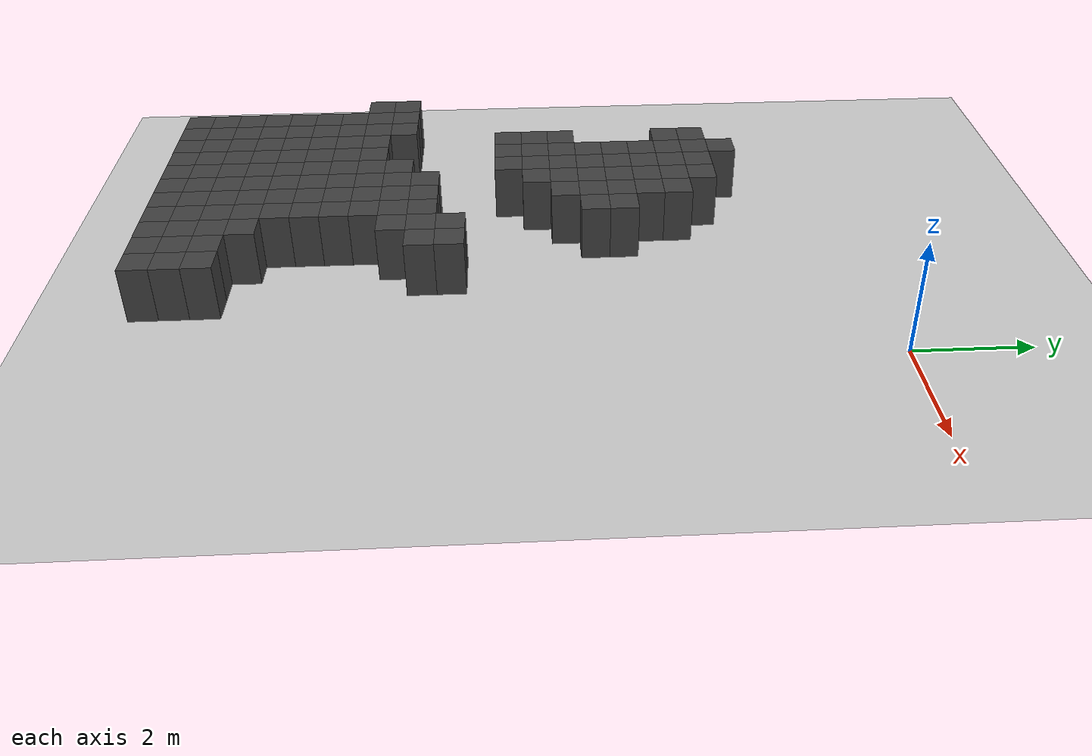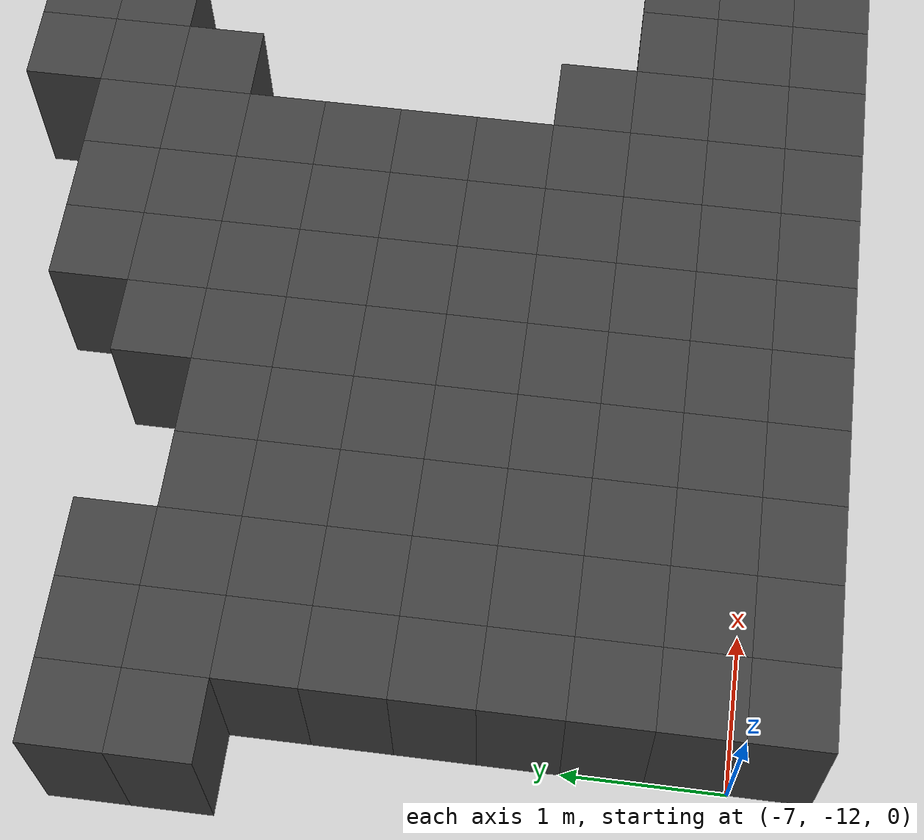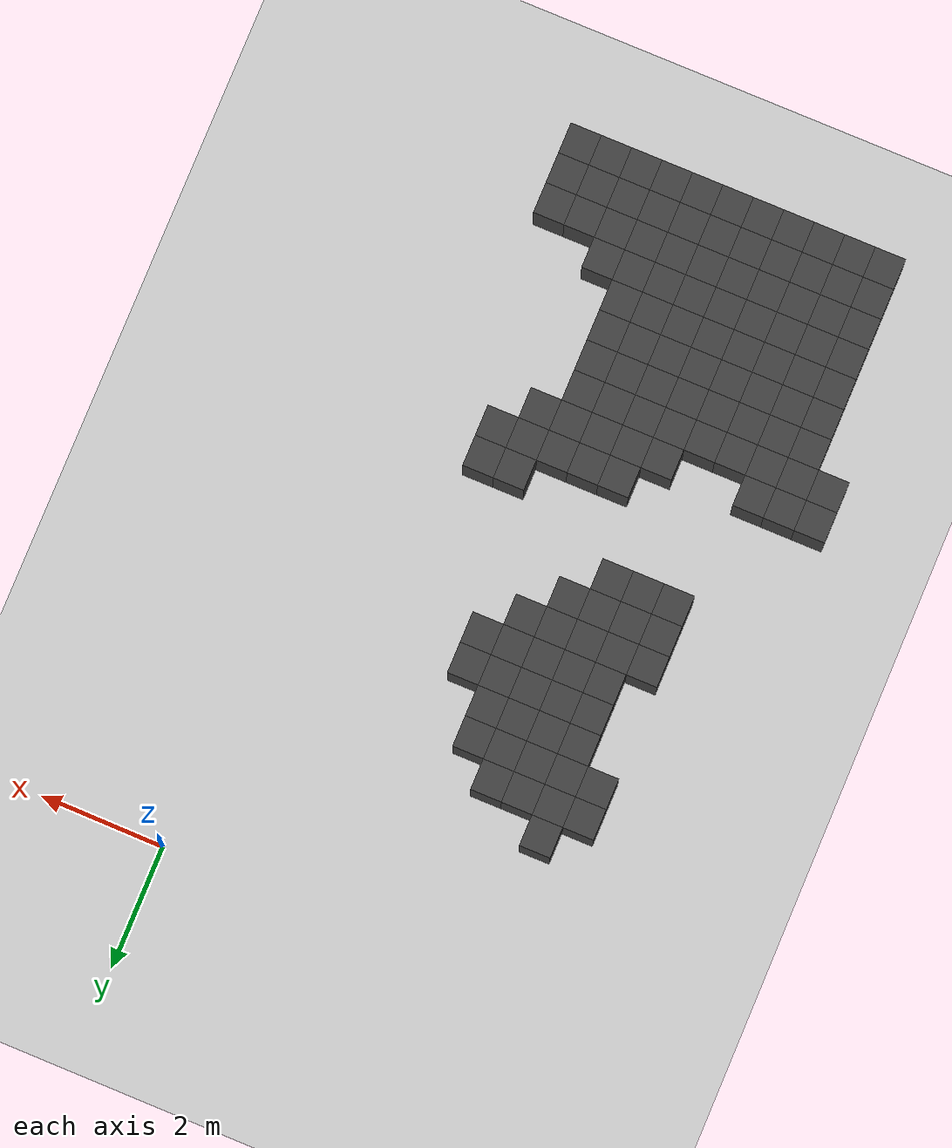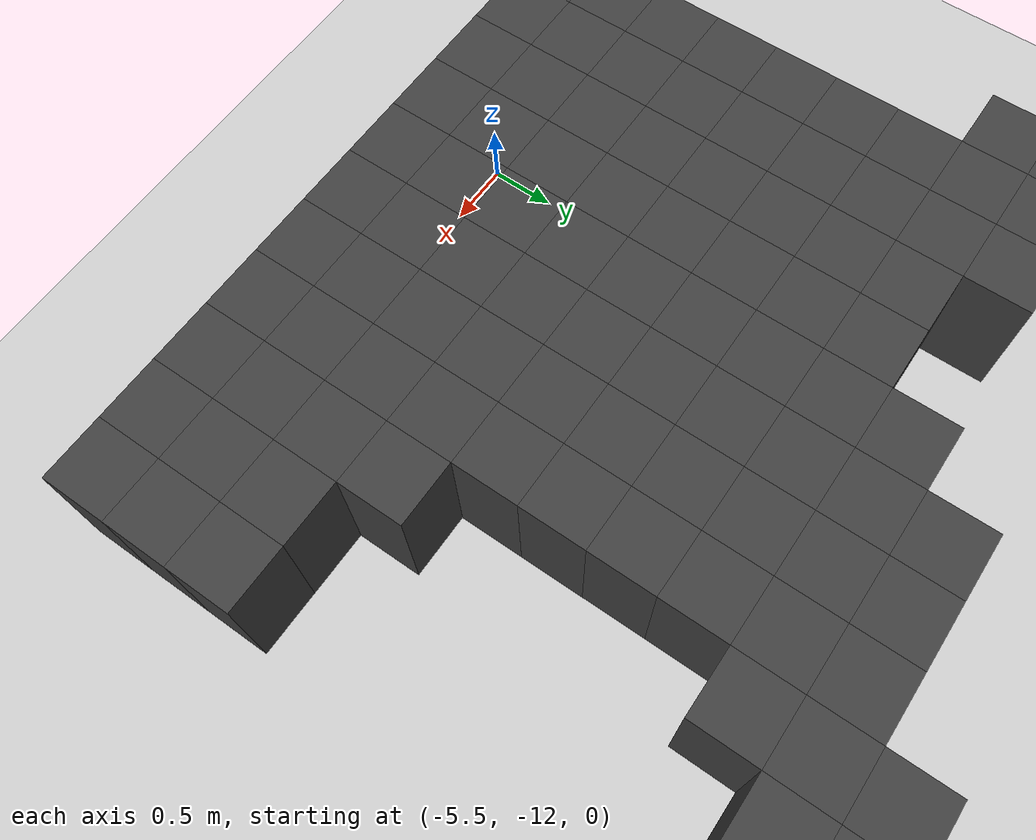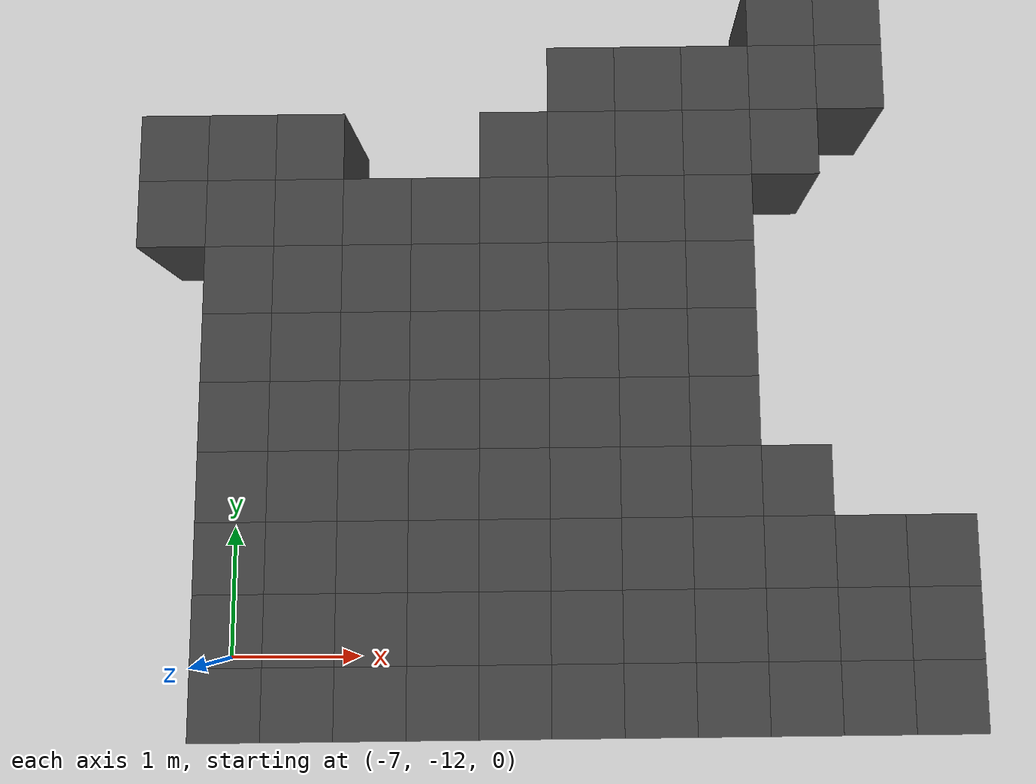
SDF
<sdf version="1.7">
 <world name="map_8658">
  <model name="ground_plane">
   <static>true</static>
   <link name="link">
    <collision name="collision">
     <geometry><plane><normal>0 0 1</normal><size>200 200</size></plane></geometry>
    </collision>
    <visual name="visual">
     <geometry><plane><normal>0 0 1</normal><size>200 200</size></plane></geometry>
     <material><ambient>0.8 0.8 0.8 1</ambient><diffuse>0.8 0.8 0.8 1</diffuse></material>
    </visual>
   </link>
  </model>
  <model name="maze_environment">
   <static>true</static>
   <link name="wall_579">
    <pose>-5.250 -2.250 0.500 0 0 0</pose>
    <collision name="col"><geometry><box><size>0.5 0.5 1.0</size></box></geometry></collision>
    <visual name="vis">
     <geometry><box><size>0.5 0.5 1.0</size></box></geometry>
     <material><ambient>0.15 0.15 0.15 1</ambient><diffuse>0.25 0.25 0.25 1</diffuse></material>
    </visual>
   </link>
   <link name="wall_601">
    <pose>-5.750 -2.750 0.500 0 0 0</pose>
    <collision name="col"><geometry><box><size>0.5 0.5 1.0</size></box></geometry></collision>
    <visual name="vis">
     <geometry><box><size>0.5 0.5 1.0</size></box></geometry>
     <material><ambient>0.15 0.15 0.15 1</ambient><diffuse>0.25 0.25 0.25 1</diffuse></material>
    </visual>
   </link>
   <link name="wall_602">
    <pose>-5.250 -2.750 0.500 0 0 0</pose>
    <collision name="col"><geometry><box><size>0.5 0.5 1.0</size></box></geometry></collision>
    <visual name="vis">
     <geometry><box><size>0.5 0.5 1.0</size></box></geometry>
     <material><ambient>0.15 0.15 0.15 1</ambient><diffuse>0.25 0.25 0.25 1</diffuse></material>
    </visual>
   </link>
   <link name="wall_603">
    <pose>-4.750 -2.750 0.500 0 0 0</pose>
    <collision name="col"><geometry><box><size>0.5 0.5 1.0</size></box></geometry></collision>
    <visual name="vis">
     <geometry><box><size>0.5 0.5 1.0</size></box></geometry>
     <material><ambient>0.15 0.15 0.15 1</ambient><diffuse>0.25 0.25 0.25 1</diffuse></material>
    </visual>
   </link>
   <link name="wall_604">
    <pose>-4.250 -2.750 0.500 0 0 0</pose>
    <collision name="col"><geometry><box><size>0.5 0.5 1.0</size></box></geometry></collision>
    <visual name="vis">
     <geometry><box><size>0.5 0.5 1.0</size></box></geometry>
     <material><ambient>0.15 0.15 0.15 1</ambient><diffuse>0.25 0.25 0.25 1</diffuse></material>
    </visual>
   </link>
   <link name="wall_621">
    <pose>-5.750 -3.250 0.500 0 0 0</pose>
    <collision name="col"><geometry><box><size>0.5 0.5 1.0</size></box></geometry></collision>
    <visual name="vis">
     <geometry><box><size>0.5 0.5 1.0</size></box></geometry>
     <material><ambient>0.15 0.15 0.15 1</ambient><diffuse>0.25 0.25 0.25 1</diffuse></material>
    </visual>
   </link>
   <link name="wall_622">
    <pose>-5.250 -3.250 0.500 0 0 0</pose>
    <collision name="col"><geometry><box><size>0.5 0.5 1.0</size></box></geometry></collision>
    <visual name="vis">
     <geometry><box><size>0.5 0.5 1.0</size></box></geometry>
     <material><ambient>0.15 0.15 0.15 1</ambient><diffuse>0.25 0.25 0.25 1</diffuse></material>
    </visual>
   </link>
   <link name="wall_623">
    <pose>-4.750 -3.250 0.500 0 0 0</pose>
    <collision name="col"><geometry><box><size>0.5 0.5 1.0</size></box></geometry></collision>
    <visual name="vis">
     <geometry><box><size>0.5 0.5 1.0</size></box></geometry>
     <material><ambient>0.15 0.15 0.15 1</ambient><diffuse>0.25 0.25 0.25 1</diffuse></material>
    </visual>
   </link>
   <link name="wall_624">
    <pose>-4.250 -3.250 0.500 0 0 0</pose>
    <collision name="col"><geometry><box><size>0.5 0.5 1.0</size></box></geometry></collision>
    <visual name="vis">
     <geometry><box><size>0.5 0.5 1.0</size></box></geometry>
     <material><ambient>0.15 0.15 0.15 1</ambient><diffuse>0.25 0.25 0.25 1</diffuse></material>
    </visual>
   </link>
   <link name="wall_625">
    <pose>-3.750 -3.250 0.500 0 0 0</pose>
    <collision name="col"><geometry><box><size>0.5 0.5 1.0</size></box></geometry></collision>
    <visual name="vis">
     <geometry><box><size>0.5 0.5 1.0</size></box></geometry>
     <material><ambient>0.15 0.15 0.15 1</ambient><diffuse>0.25 0.25 0.25 1</diffuse></material>
    </visual>
   </link>
   <link name="wall_639">
    <pose>-5.250 -3.750 0.500 0 0 0</pose>
    <collision name="col"><geometry><box><size>0.5 0.5 1.0</size></box></geometry></collision>
    <visual name="vis">
     <geometry><box><size>0.5 0.5 1.0</size></box></geometry>
     <material><ambient>0.15 0.15 0.15 1</ambient><diffuse>0.25 0.25 0.25 1</diffuse></material>
    </visual>
   </link>
   <link name="wall_640">
    <pose>-4.750 -3.750 0.500 0 0 0</pose>
    <collision name="col"><geometry><box><size>0.5 0.5 1.0</size></box></geometry></collision>
    <visual name="vis">
     <geometry><box><size>0.5 0.5 1.0</size></box></geometry>
     <material><ambient>0.15 0.15 0.15 1</ambient><diffuse>0.25 0.25 0.25 1</diffuse></material>
    </visual>
   </link>
   <link name="wall_641">
    <pose>-4.250 -3.750 0.500 0 0 0</pose>
    <collision name="col"><geometry><box><size>0.5 0.5 1.0</size></box></geometry></collision>
    <visual name="vis">
     <geometry><box><size>0.5 0.5 1.0</size></box></geometry>
     <material><ambient>0.15 0.15 0.15 1</ambient><diffuse>0.25 0.25 0.25 1</diffuse></material>
    </visual>
   </link>
   <link name="wall_642">
    <pose>-3.750 -3.750 0.500 0 0 0</pose>
    <collision name="col"><geometry><box><size>0.5 0.5 1.0</size></box></geometry></collision>
    <visual name="vis">
     <geometry><box><size>0.5 0.5 1.0</size></box></geometry>
     <material><ambient>0.15 0.15 0.15 1</ambient><diffuse>0.25 0.25 0.25 1</diffuse></material>
    </visual>
   </link>
   <link name="wall_657">
    <pose>-5.250 -4.250 0.500 0 0 0</pose>
    <collision name="col"><geometry><box><size>0.5 0.5 1.0</size></box></geometry></collision>
    <visual name="vis">
     <geometry><box><size>0.5 0.5 1.0</size></box></geometry>
     <material><ambient>0.15 0.15 0.15 1</ambient><diffuse>0.25 0.25 0.25 1</diffuse></material>
    </visual>
   </link>
   <link name="wall_658">
    <pose>-4.750 -4.250 0.500 0 0 0</pose>
    <collision name="col"><geometry><box><size>0.5 0.5 1.0</size></box></geometry></collision>
    <visual name="vis">
     <geometry><box><size>0.5 0.5 1.0</size></box></geometry>
     <material><ambient>0.15 0.15 0.15 1</ambient><diffuse>0.25 0.25 0.25 1</diffuse></material>
    </visual>
   </link>
   <link name="wall_659">
    <pose>-4.250 -4.250 0.500 0 0 0</pose>
    <collision name="col"><geometry><box><size>0.5 0.5 1.0</size></box></geometry></collision>
    <visual name="vis">
     <geometry><box><size>0.5 0.5 1.0</size></box></geometry>
     <material><ambient>0.15 0.15 0.15 1</ambient><diffuse>0.25 0.25 0.25 1</diffuse></material>
    </visual>
   </link>
   <link name="wall_660">
    <pose>-3.750 -4.250 0.500 0 0 0</pose>
    <collision name="col"><geometry><box><size>0.5 0.5 1.0</size></box></geometry></collision>
    <visual name="vis">
     <geometry><box><size>0.5 0.5 1.0</size></box></geometry>
     <material><ambient>0.15 0.15 0.15 1</ambient><diffuse>0.25 0.25 0.25 1</diffuse></material>
    </visual>
   </link>
   <link name="wall_661">
    <pose>-3.250 -4.250 0.500 0 0 0</pose>
    <collision name="col"><geometry><box><size>0.5 0.5 1.0</size></box></geometry></collision>
    <visual name="vis">
     <geometry><box><size>0.5 0.5 1.0</size></box></geometry>
     <material><ambient>0.15 0.15 0.15 1</ambient><diffuse>0.25 0.25 0.25 1</diffuse></material>
    </visual>
   </link>
   <link name="wall_670">
    <pose>-5.250 -4.750 0.500 0 0 0</pose>
    <collision name="col"><geometry><box><size>0.5 0.5 1.0</size></box></geometry></collision>
    <visual name="vis">
     <geometry><box><size>0.5 0.5 1.0</size></box></geometry>
     <material><ambient>0.15 0.15 0.15 1</ambient><diffuse>0.25 0.25 0.25 1</diffuse></material>
    </visual>
   </link>
   <link name="wall_671">
    <pose>-4.750 -4.750 0.500 0 0 0</pose>
    <collision name="col"><geometry><box><size>0.5 0.5 1.0</size></box></geometry></collision>
    <visual name="vis">
     <geometry><box><size>0.5 0.5 1.0</size></box></geometry>
     <material><ambient>0.15 0.15 0.15 1</ambient><diffuse>0.25 0.25 0.25 1</diffuse></material>
    </visual>
   </link>
   <link name="wall_672">
    <pose>-4.250 -4.750 0.500 0 0 0</pose>
    <collision name="col"><geometry><box><size>0.5 0.5 1.0</size></box></geometry></collision>
    <visual name="vis">
     <geometry><box><size>0.5 0.5 1.0</size></box></geometry>
     <material><ambient>0.15 0.15 0.15 1</ambient><diffuse>0.25 0.25 0.25 1</diffuse></material>
    </visual>
   </link>
   <link name="wall_673">
    <pose>-3.750 -4.750 0.500 0 0 0</pose>
    <collision name="col"><geometry><box><size>0.5 0.5 1.0</size></box></geometry></collision>
    <visual name="vis">
     <geometry><box><size>0.5 0.5 1.0</size></box></geometry>
     <material><ambient>0.15 0.15 0.15 1</ambient><diffuse>0.25 0.25 0.25 1</diffuse></material>
    </visual>
   </link>
   <link name="wall_674">
    <pose>-3.250 -4.750 0.500 0 0 0</pose>
    <collision name="col"><geometry><box><size>0.5 0.5 1.0</size></box></geometry></collision>
    <visual name="vis">
     <geometry><box><size>0.5 0.5 1.0</size></box></geometry>
     <material><ambient>0.15 0.15 0.15 1</ambient><diffuse>0.25 0.25 0.25 1</diffuse></material>
    </visual>
   </link>
   <link name="wall_677">
    <pose>-5.750 -5.250 0.500 0 0 0</pose>
    <collision name="col"><geometry><box><size>0.5 0.5 1.0</size></box></geometry></collision>
    <visual name="vis">
     <geometry><box><size>0.5 0.5 1.0</size></box></geometry>
     <material><ambient>0.15 0.15 0.15 1</ambient><diffuse>0.25 0.25 0.25 1</diffuse></material>
    </visual>
   </link>
   <link name="wall_678">
    <pose>-5.250 -5.250 0.500 0 0 0</pose>
    <collision name="col"><geometry><box><size>0.5 0.5 1.0</size></box></geometry></collision>
    <visual name="vis">
     <geometry><box><size>0.5 0.5 1.0</size></box></geometry>
     <material><ambient>0.15 0.15 0.15 1</ambient><diffuse>0.25 0.25 0.25 1</diffuse></material>
    </visual>
   </link>
   <link name="wall_679">
    <pose>-4.750 -5.250 0.500 0 0 0</pose>
    <collision name="col"><geometry><box><size>0.5 0.5 1.0</size></box></geometry></collision>
    <visual name="vis">
     <geometry><box><size>0.5 0.5 1.0</size></box></geometry>
     <material><ambient>0.15 0.15 0.15 1</ambient><diffuse>0.25 0.25 0.25 1</diffuse></material>
    </visual>
   </link>
   <link name="wall_680">
    <pose>-4.250 -5.250 0.500 0 0 0</pose>
    <collision name="col"><geometry><box><size>0.5 0.5 1.0</size></box></geometry></collision>
    <visual name="vis">
     <geometry><box><size>0.5 0.5 1.0</size></box></geometry>
     <material><ambient>0.15 0.15 0.15 1</ambient><diffuse>0.25 0.25 0.25 1</diffuse></material>
    </visual>
   </link>
   <link name="wall_681">
    <pose>-3.750 -5.250 0.500 0 0 0</pose>
    <collision name="col"><geometry><box><size>0.5 0.5 1.0</size></box></geometry></collision>
    <visual name="vis">
     <geometry><box><size>0.5 0.5 1.0</size></box></geometry>
     <material><ambient>0.15 0.15 0.15 1</ambient><diffuse>0.25 0.25 0.25 1</diffuse></material>
    </visual>
   </link>
   <link name="wall_684">
    <pose>-5.750 -5.750 0.500 0 0 0</pose>
    <collision name="col"><geometry><box><size>0.5 0.5 1.0</size></box></geometry></collision>
    <visual name="vis">
     <geometry><box><size>0.5 0.5 1.0</size></box></geometry>
     <material><ambient>0.15 0.15 0.15 1</ambient><diffuse>0.25 0.25 0.25 1</diffuse></material>
    </visual>
   </link>
   <link name="wall_685">
    <pose>-5.250 -5.750 0.500 0 0 0</pose>
    <collision name="col"><geometry><box><size>0.5 0.5 1.0</size></box></geometry></collision>
    <visual name="vis">
     <geometry><box><size>0.5 0.5 1.0</size></box></geometry>
     <material><ambient>0.15 0.15 0.15 1</ambient><diffuse>0.25 0.25 0.25 1</diffuse></material>
    </visual>
   </link>
   <link name="wall_686">
    <pose>-4.750 -5.750 0.500 0 0 0</pose>
    <collision name="col"><geometry><box><size>0.5 0.5 1.0</size></box></geometry></collision>
    <visual name="vis">
     <geometry><box><size>0.5 0.5 1.0</size></box></geometry>
     <material><ambient>0.15 0.15 0.15 1</ambient><diffuse>0.25 0.25 0.25 1</diffuse></material>
    </visual>
   </link>
   <link name="wall_687">
    <pose>-4.250 -5.750 0.500 0 0 0</pose>
    <collision name="col"><geometry><box><size>0.5 0.5 1.0</size></box></geometry></collision>
    <visual name="vis">
     <geometry><box><size>0.5 0.5 1.0</size></box></geometry>
     <material><ambient>0.15 0.15 0.15 1</ambient><diffuse>0.25 0.25 0.25 1</diffuse></material>
    </visual>
   </link>
   <link name="wall_690">
    <pose>-5.750 -6.250 0.500 0 0 0</pose>
    <collision name="col"><geometry><box><size>0.5 0.5 1.0</size></box></geometry></collision>
    <visual name="vis">
     <geometry><box><size>0.5 0.5 1.0</size></box></geometry>
     <material><ambient>0.15 0.15 0.15 1</ambient><diffuse>0.25 0.25 0.25 1</diffuse></material>
    </visual>
   </link>
   <link name="wall_691">
    <pose>-5.250 -6.250 0.500 0 0 0</pose>
    <collision name="col"><geometry><box><size>0.5 0.5 1.0</size></box></geometry></collision>
    <visual name="vis">
     <geometry><box><size>0.5 0.5 1.0</size></box></geometry>
     <material><ambient>0.15 0.15 0.15 1</ambient><diffuse>0.25 0.25 0.25 1</diffuse></material>
    </visual>
   </link>
   <link name="wall_692">
    <pose>-4.750 -6.250 0.500 0 0 0</pose>
    <collision name="col"><geometry><box><size>0.5 0.5 1.0</size></box></geometry></collision>
    <visual name="vis">
     <geometry><box><size>0.5 0.5 1.0</size></box></geometry>
     <material><ambient>0.15 0.15 0.15 1</ambient><diffuse>0.25 0.25 0.25 1</diffuse></material>
    </visual>
   </link>
   <link name="wall_700">
    <pose>-2.750 -7.250 0.500 0 0 0</pose>
    <collision name="col"><geometry><box><size>0.5 0.5 1.0</size></box></geometry></collision>
    <visual name="vis">
     <geometry><box><size>0.5 0.5 1.0</size></box></geometry>
     <material><ambient>0.15 0.15 0.15 1</ambient><diffuse>0.25 0.25 0.25 1</diffuse></material>
    </visual>
   </link>
   <link name="wall_701">
    <pose>-2.250 -7.250 0.500 0 0 0</pose>
    <collision name="col"><geometry><box><size>0.5 0.5 1.0</size></box></geometry></collision>
    <visual name="vis">
     <geometry><box><size>0.5 0.5 1.0</size></box></geometry>
     <material><ambient>0.15 0.15 0.15 1</ambient><diffuse>0.25 0.25 0.25 1</diffuse></material>
    </visual>
   </link>
   <link name="wall_710">
    <pose>-4.250 -7.750 0.500 0 0 0</pose>
    <collision name="col"><geometry><box><size>0.5 0.5 1.0</size></box></geometry></collision>
    <visual name="vis">
     <geometry><box><size>0.5 0.5 1.0</size></box></geometry>
     <material><ambient>0.15 0.15 0.15 1</ambient><diffuse>0.25 0.25 0.25 1</diffuse></material>
    </visual>
   </link>
   <link name="wall_711">
    <pose>-3.750 -7.750 0.500 0 0 0</pose>
    <collision name="col"><geometry><box><size>0.5 0.5 1.0</size></box></geometry></collision>
    <visual name="vis">
     <geometry><box><size>0.5 0.5 1.0</size></box></geometry>
     <material><ambient>0.15 0.15 0.15 1</ambient><diffuse>0.25 0.25 0.25 1</diffuse></material>
    </visual>
   </link>
   <link name="wall_712">
    <pose>-3.250 -7.750 0.500 0 0 0</pose>
    <collision name="col"><geometry><box><size>0.5 0.5 1.0</size></box></geometry></collision>
    <visual name="vis">
     <geometry><box><size>0.5 0.5 1.0</size></box></geometry>
     <material><ambient>0.15 0.15 0.15 1</ambient><diffuse>0.25 0.25 0.25 1</diffuse></material>
    </visual>
   </link>
   <link name="wall_713">
    <pose>-2.750 -7.750 0.500 0 0 0</pose>
    <collision name="col"><geometry><box><size>0.5 0.5 1.0</size></box></geometry></collision>
    <visual name="vis">
     <geometry><box><size>0.5 0.5 1.0</size></box></geometry>
     <material><ambient>0.15 0.15 0.15 1</ambient><diffuse>0.25 0.25 0.25 1</diffuse></material>
    </visual>
   </link>
   <link name="wall_714">
    <pose>-2.250 -7.750 0.500 0 0 0</pose>
    <collision name="col"><geometry><box><size>0.5 0.5 1.0</size></box></geometry></collision>
    <visual name="vis">
     <geometry><box><size>0.5 0.5 1.0</size></box></geometry>
     <material><ambient>0.15 0.15 0.15 1</ambient><diffuse>0.25 0.25 0.25 1</diffuse></material>
    </visual>
   </link>
   <link name="wall_724">
    <pose>-7.250 -8.250 0.500 0 0 0</pose>
    <collision name="col"><geometry><box><size>0.5 0.5 1.0</size></box></geometry></collision>
    <visual name="vis">
     <geometry><box><size>0.5 0.5 1.0</size></box></geometry>
     <material><ambient>0.15 0.15 0.15 1</ambient><diffuse>0.25 0.25 0.25 1</diffuse></material>
    </visual>
   </link>
   <link name="wall_725">
    <pose>-6.750 -8.250 0.500 0 0 0</pose>
    <collision name="col"><geometry><box><size>0.5 0.5 1.0</size></box></geometry></collision>
    <visual name="vis">
     <geometry><box><size>0.5 0.5 1.0</size></box></geometry>
     <material><ambient>0.15 0.15 0.15 1</ambient><diffuse>0.25 0.25 0.25 1</diffuse></material>
    </visual>
   </link>
   <link name="wall_726">
    <pose>-6.250 -8.250 0.500 0 0 0</pose>
    <collision name="col"><geometry><box><size>0.5 0.5 1.0</size></box></geometry></collision>
    <visual name="vis">
     <geometry><box><size>0.5 0.5 1.0</size></box></geometry>
     <material><ambient>0.15 0.15 0.15 1</ambient><diffuse>0.25 0.25 0.25 1</diffuse></material>
    </visual>
   </link>
   <link name="wall_727">
    <pose>-4.750 -8.250 0.500 0 0 0</pose>
    <collision name="col"><geometry><box><size>0.5 0.5 1.0</size></box></geometry></collision>
    <visual name="vis">
     <geometry><box><size>0.5 0.5 1.0</size></box></geometry>
     <material><ambient>0.15 0.15 0.15 1</ambient><diffuse>0.25 0.25 0.25 1</diffuse></material>
    </visual>
   </link>
   <link name="wall_728">
    <pose>-4.250 -8.250 0.500 0 0 0</pose>
    <collision name="col"><geometry><box><size>0.5 0.5 1.0</size></box></geometry></collision>
    <visual name="vis">
     <geometry><box><size>0.5 0.5 1.0</size></box></geometry>
     <material><ambient>0.15 0.15 0.15 1</ambient><diffuse>0.25 0.25 0.25 1</diffuse></material>
    </visual>
   </link>
   <link name="wall_729">
    <pose>-3.750 -8.250 0.500 0 0 0</pose>
    <collision name="col"><geometry><box><size>0.5 0.5 1.0</size></box></geometry></collision>
    <visual name="vis">
     <geometry><box><size>0.5 0.5 1.0</size></box></geometry>
     <material><ambient>0.15 0.15 0.15 1</ambient><diffuse>0.25 0.25 0.25 1</diffuse></material>
    </visual>
   </link>
   <link name="wall_730">
    <pose>-3.250 -8.250 0.500 0 0 0</pose>
    <collision name="col"><geometry><box><size>0.5 0.5 1.0</size></box></geometry></collision>
    <visual name="vis">
     <geometry><box><size>0.5 0.5 1.0</size></box></geometry>
     <material><ambient>0.15 0.15 0.15 1</ambient><diffuse>0.25 0.25 0.25 1</diffuse></material>
    </visual>
   </link>
   <link name="wall_731">
    <pose>-2.750 -8.250 0.500 0 0 0</pose>
    <collision name="col"><geometry><box><size>0.5 0.5 1.0</size></box></geometry></collision>
    <visual name="vis">
     <geometry><box><size>0.5 0.5 1.0</size></box></geometry>
     <material><ambient>0.15 0.15 0.15 1</ambient><diffuse>0.25 0.25 0.25 1</diffuse></material>
    </visual>
   </link>
   <link name="wall_743">
    <pose>-7.250 -8.750 0.500 0 0 0</pose>
    <collision name="col"><geometry><box><size>0.5 0.5 1.0</size></box></geometry></collision>
    <visual name="vis">
     <geometry><box><size>0.5 0.5 1.0</size></box></geometry>
     <material><ambient>0.15 0.15 0.15 1</ambient><diffuse>0.25 0.25 0.25 1</diffuse></material>
    </visual>
   </link>
   <link name="wall_744">
    <pose>-6.750 -8.750 0.500 0 0 0</pose>
    <collision name="col"><geometry><box><size>0.5 0.5 1.0</size></box></geometry></collision>
    <visual name="vis">
     <geometry><box><size>0.5 0.5 1.0</size></box></geometry>
     <material><ambient>0.15 0.15 0.15 1</ambient><diffuse>0.25 0.25 0.25 1</diffuse></material>
    </visual>
   </link>
   <link name="wall_745">
    <pose>-6.250 -8.750 0.500 0 0 0</pose>
    <collision name="col"><geometry><box><size>0.5 0.5 1.0</size></box></geometry></collision>
    <visual name="vis">
     <geometry><box><size>0.5 0.5 1.0</size></box></geometry>
     <material><ambient>0.15 0.15 0.15 1</ambient><diffuse>0.25 0.25 0.25 1</diffuse></material>
    </visual>
   </link>
   <link name="wall_746">
    <pose>-5.750 -8.750 0.500 0 0 0</pose>
    <collision name="col"><geometry><box><size>0.5 0.5 1.0</size></box></geometry></collision>
    <visual name="vis">
     <geometry><box><size>0.5 0.5 1.0</size></box></geometry>
     <material><ambient>0.15 0.15 0.15 1</ambient><diffuse>0.25 0.25 0.25 1</diffuse></material>
    </visual>
   </link>
   <link name="wall_747">
    <pose>-5.250 -8.750 0.500 0 0 0</pose>
    <collision name="col"><geometry><box><size>0.5 0.5 1.0</size></box></geometry></collision>
    <visual name="vis">
     <geometry><box><size>0.5 0.5 1.0</size></box></geometry>
     <material><ambient>0.15 0.15 0.15 1</ambient><diffuse>0.25 0.25 0.25 1</diffuse></material>
    </visual>
   </link>
   <link name="wall_748">
    <pose>-4.750 -8.750 0.500 0 0 0</pose>
    <collision name="col"><geometry><box><size>0.5 0.5 1.0</size></box></geometry></collision>
    <visual name="vis">
     <geometry><box><size>0.5 0.5 1.0</size></box></geometry>
     <material><ambient>0.15 0.15 0.15 1</ambient><diffuse>0.25 0.25 0.25 1</diffuse></material>
    </visual>
   </link>
   <link name="wall_749">
    <pose>-4.250 -8.750 0.500 0 0 0</pose>
    <collision name="col"><geometry><box><size>0.5 0.5 1.0</size></box></geometry></collision>
    <visual name="vis">
     <geometry><box><size>0.5 0.5 1.0</size></box></geometry>
     <material><ambient>0.15 0.15 0.15 1</ambient><diffuse>0.25 0.25 0.25 1</diffuse></material>
    </visual>
   </link>
   <link name="wall_750">
    <pose>-3.750 -8.750 0.500 0 0 0</pose>
    <collision name="col"><geometry><box><size>0.5 0.5 1.0</size></box></geometry></collision>
    <visual name="vis">
     <geometry><box><size>0.5 0.5 1.0</size></box></geometry>
     <material><ambient>0.15 0.15 0.15 1</ambient><diffuse>0.25 0.25 0.25 1</diffuse></material>
    </visual>
   </link>
   <link name="wall_751">
    <pose>-3.250 -8.750 0.500 0 0 0</pose>
    <collision name="col"><geometry><box><size>0.5 0.5 1.0</size></box></geometry></collision>
    <visual name="vis">
     <geometry><box><size>0.5 0.5 1.0</size></box></geometry>
     <material><ambient>0.15 0.15 0.15 1</ambient><diffuse>0.25 0.25 0.25 1</diffuse></material>
    </visual>
   </link>
   <link name="wall_770">
    <pose>-6.750 -9.250 0.500 0 0 0</pose>
    <collision name="col"><geometry><box><size>0.5 0.5 1.0</size></box></geometry></collision>
    <visual name="vis">
     <geometry><box><size>0.5 0.5 1.0</size></box></geometry>
     <material><ambient>0.15 0.15 0.15 1</ambient><diffuse>0.25 0.25 0.25 1</diffuse></material>
    </visual>
   </link>
   <link name="wall_771">
    <pose>-6.250 -9.250 0.500 0 0 0</pose>
    <collision name="col"><geometry><box><size>0.5 0.5 1.0</size></box></geometry></collision>
    <visual name="vis">
     <geometry><box><size>0.5 0.5 1.0</size></box></geometry>
     <material><ambient>0.15 0.15 0.15 1</ambient><diffuse>0.25 0.25 0.25 1</diffuse></material>
    </visual>
   </link>
   <link name="wall_772">
    <pose>-5.750 -9.250 0.500 0 0 0</pose>
    <collision name="col"><geometry><box><size>0.5 0.5 1.0</size></box></geometry></collision>
    <visual name="vis">
     <geometry><box><size>0.5 0.5 1.0</size></box></geometry>
     <material><ambient>0.15 0.15 0.15 1</ambient><diffuse>0.25 0.25 0.25 1</diffuse></material>
    </visual>
   </link>
   <link name="wall_773">
    <pose>-5.250 -9.250 0.500 0 0 0</pose>
    <collision name="col"><geometry><box><size>0.5 0.5 1.0</size></box></geometry></collision>
    <visual name="vis">
     <geometry><box><size>0.5 0.5 1.0</size></box></geometry>
     <material><ambient>0.15 0.15 0.15 1</ambient><diffuse>0.25 0.25 0.25 1</diffuse></material>
    </visual>
   </link>
   <link name="wall_774">
    <pose>-4.750 -9.250 0.500 0 0 0</pose>
    <collision name="col"><geometry><box><size>0.5 0.5 1.0</size></box></geometry></collision>
    <visual name="vis">
     <geometry><box><size>0.5 0.5 1.0</size></box></geometry>
     <material><ambient>0.15 0.15 0.15 1</ambient><diffuse>0.25 0.25 0.25 1</diffuse></material>
    </visual>
   </link>
   <link name="wall_775">
    <pose>-4.250 -9.250 0.500 0 0 0</pose>
    <collision name="col"><geometry><box><size>0.5 0.5 1.0</size></box></geometry></collision>
    <visual name="vis">
     <geometry><box><size>0.5 0.5 1.0</size></box></geometry>
     <material><ambient>0.15 0.15 0.15 1</ambient><diffuse>0.25 0.25 0.25 1</diffuse></material>
    </visual>
   </link>
   <link name="wall_776">
    <pose>-3.750 -9.250 0.500 0 0 0</pose>
    <collision name="col"><geometry><box><size>0.5 0.5 1.0</size></box></geometry></collision>
    <visual name="vis">
     <geometry><box><size>0.5 0.5 1.0</size></box></geometry>
     <material><ambient>0.15 0.15 0.15 1</ambient><diffuse>0.25 0.25 0.25 1</diffuse></material>
    </visual>
   </link>
   <link name="wall_777">
    <pose>-3.250 -9.250 0.500 0 0 0</pose>
    <collision name="col"><geometry><box><size>0.5 0.5 1.0</size></box></geometry></collision>
    <visual name="vis">
     <geometry><box><size>0.5 0.5 1.0</size></box></geometry>
     <material><ambient>0.15 0.15 0.15 1</ambient><diffuse>0.25 0.25 0.25 1</diffuse></material>
    </visual>
   </link>
   <link name="wall_796">
    <pose>-6.750 -9.750 0.500 0 0 0</pose>
    <collision name="col"><geometry><box><size>0.5 0.5 1.0</size></box></geometry></collision>
    <visual name="vis">
     <geometry><box><size>0.5 0.5 1.0</size></box></geometry>
     <material><ambient>0.15 0.15 0.15 1</ambient><diffuse>0.25 0.25 0.25 1</diffuse></material>
    </visual>
   </link>
   <link name="wall_797">
    <pose>-6.250 -9.750 0.500 0 0 0</pose>
    <collision name="col"><geometry><box><size>0.5 0.5 1.0</size></box></geometry></collision>
    <visual name="vis">
     <geometry><box><size>0.5 0.5 1.0</size></box></geometry>
     <material><ambient>0.15 0.15 0.15 1</ambient><diffuse>0.25 0.25 0.25 1</diffuse></material>
    </visual>
   </link>
   <link name="wall_798">
    <pose>-5.750 -9.750 0.500 0 0 0</pose>
    <collision name="col"><geometry><box><size>0.5 0.5 1.0</size></box></geometry></collision>
    <visual name="vis">
     <geometry><box><size>0.5 0.5 1.0</size></box></geometry>
     <material><ambient>0.15 0.15 0.15 1</ambient><diffuse>0.25 0.25 0.25 1</diffuse></material>
    </visual>
   </link>
   <link name="wall_799">
    <pose>-5.250 -9.750 0.500 0 0 0</pose>
    <collision name="col"><geometry><box><size>0.5 0.5 1.0</size></box></geometry></collision>
    <visual name="vis">
     <geometry><box><size>0.5 0.5 1.0</size></box></geometry>
     <material><ambient>0.15 0.15 0.15 1</ambient><diffuse>0.25 0.25 0.25 1</diffuse></material>
    </visual>
   </link>
   <link name="wall_800">
    <pose>-4.750 -9.750 0.500 0 0 0</pose>
    <collision name="col"><geometry><box><size>0.5 0.5 1.0</size></box></geometry></collision>
    <visual name="vis">
     <geometry><box><size>0.5 0.5 1.0</size></box></geometry>
     <material><ambient>0.15 0.15 0.15 1</ambient><diffuse>0.25 0.25 0.25 1</diffuse></material>
    </visual>
   </link>
   <link name="wall_801">
    <pose>-4.250 -9.750 0.500 0 0 0</pose>
    <collision name="col"><geometry><box><size>0.5 0.5 1.0</size></box></geometry></collision>
    <visual name="vis">
     <geometry><box><size>0.5 0.5 1.0</size></box></geometry>
     <material><ambient>0.15 0.15 0.15 1</ambient><diffuse>0.25 0.25 0.25 1</diffuse></material>
    </visual>
   </link>
   <link name="wall_802">
    <pose>-3.750 -9.750 0.500 0 0 0</pose>
    <collision name="col"><geometry><box><size>0.5 0.5 1.0</size></box></geometry></collision>
    <visual name="vis">
     <geometry><box><size>0.5 0.5 1.0</size></box></geometry>
     <material><ambient>0.15 0.15 0.15 1</ambient><diffuse>0.25 0.25 0.25 1</diffuse></material>
    </visual>
   </link>
   <link name="wall_803">
    <pose>-3.250 -9.750 0.500 0 0 0</pose>
    <collision name="col"><geometry><box><size>0.5 0.5 1.0</size></box></geometry></collision>
    <visual name="vis">
     <geometry><box><size>0.5 0.5 1.0</size></box></geometry>
     <material><ambient>0.15 0.15 0.15 1</ambient><diffuse>0.25 0.25 0.25 1</diffuse></material>
    </visual>
   </link>
   <link name="wall_824">
    <pose>-6.750 -10.250 0.500 0 0 0</pose>
    <collision name="col"><geometry><box><size>0.5 0.5 1.0</size></box></geometry></collision>
    <visual name="vis">
     <geometry><box><size>0.5 0.5 1.0</size></box></geometry>
     <material><ambient>0.15 0.15 0.15 1</ambient><diffuse>0.25 0.25 0.25 1</diffuse></material>
    </visual>
   </link>
   <link name="wall_825">
    <pose>-6.250 -10.250 0.500 0 0 0</pose>
    <collision name="col"><geometry><box><size>0.5 0.5 1.0</size></box></geometry></collision>
    <visual name="vis">
     <geometry><box><size>0.5 0.5 1.0</size></box></geometry>
     <material><ambient>0.15 0.15 0.15 1</ambient><diffuse>0.25 0.25 0.25 1</diffuse></material>
    </visual>
   </link>
   <link name="wall_826">
    <pose>-5.750 -10.250 0.500 0 0 0</pose>
    <collision name="col"><geometry><box><size>0.5 0.5 1.0</size></box></geometry></collision>
    <visual name="vis">
     <geometry><box><size>0.5 0.5 1.0</size></box></geometry>
     <material><ambient>0.15 0.15 0.15 1</ambient><diffuse>0.25 0.25 0.25 1</diffuse></material>
    </visual>
   </link>
   <link name="wall_827">
    <pose>-5.250 -10.250 0.500 0 0 0</pose>
    <collision name="col"><geometry><box><size>0.5 0.5 1.0</size></box></geometry></collision>
    <visual name="vis">
     <geometry><box><size>0.5 0.5 1.0</size></box></geometry>
     <material><ambient>0.15 0.15 0.15 1</ambient><diffuse>0.25 0.25 0.25 1</diffuse></material>
    </visual>
   </link>
   <link name="wall_828">
    <pose>-4.750 -10.250 0.500 0 0 0</pose>
    <collision name="col"><geometry><box><size>0.5 0.5 1.0</size></box></geometry></collision>
    <visual name="vis">
     <geometry><box><size>0.5 0.5 1.0</size></box></geometry>
     <material><ambient>0.15 0.15 0.15 1</ambient><diffuse>0.25 0.25 0.25 1</diffuse></material>
    </visual>
   </link>
   <link name="wall_829">
    <pose>-4.250 -10.250 0.500 0 0 0</pose>
    <collision name="col"><geometry><box><size>0.5 0.5 1.0</size></box></geometry></collision>
    <visual name="vis">
     <geometry><box><size>0.5 0.5 1.0</size></box></geometry>
     <material><ambient>0.15 0.15 0.15 1</ambient><diffuse>0.25 0.25 0.25 1</diffuse></material>
    </visual>
   </link>
   <link name="wall_830">
    <pose>-3.750 -10.250 0.500 0 0 0</pose>
    <collision name="col"><geometry><box><size>0.5 0.5 1.0</size></box></geometry></collision>
    <visual name="vis">
     <geometry><box><size>0.5 0.5 1.0</size></box></geometry>
     <material><ambient>0.15 0.15 0.15 1</ambient><diffuse>0.25 0.25 0.25 1</diffuse></material>
    </visual>
   </link>
   <link name="wall_831">
    <pose>-3.250 -10.250 0.500 0 0 0</pose>
    <collision name="col"><geometry><box><size>0.5 0.5 1.0</size></box></geometry></collision>
    <visual name="vis">
     <geometry><box><size>0.5 0.5 1.0</size></box></geometry>
     <material><ambient>0.15 0.15 0.15 1</ambient><diffuse>0.25 0.25 0.25 1</diffuse></material>
    </visual>
   </link>
   <link name="wall_853">
    <pose>-6.750 -10.750 0.500 0 0 0</pose>
    <collision name="col"><geometry><box><size>0.5 0.5 1.0</size></box></geometry></collision>
    <visual name="vis">
     <geometry><box><size>0.5 0.5 1.0</size></box></geometry>
     <material><ambient>0.15 0.15 0.15 1</ambient><diffuse>0.25 0.25 0.25 1</diffuse></material>
    </visual>
   </link>
   <link name="wall_854">
    <pose>-6.250 -10.750 0.500 0 0 0</pose>
    <collision name="col"><geometry><box><size>0.5 0.5 1.0</size></box></geometry></collision>
    <visual name="vis">
     <geometry><box><size>0.5 0.5 1.0</size></box></geometry>
     <material><ambient>0.15 0.15 0.15 1</ambient><diffuse>0.25 0.25 0.25 1</diffuse></material>
    </visual>
   </link>
   <link name="wall_855">
    <pose>-5.750 -10.750 0.500 0 0 0</pose>
    <collision name="col"><geometry><box><size>0.5 0.5 1.0</size></box></geometry></collision>
    <visual name="vis">
     <geometry><box><size>0.5 0.5 1.0</size></box></geometry>
     <material><ambient>0.15 0.15 0.15 1</ambient><diffuse>0.25 0.25 0.25 1</diffuse></material>
    </visual>
   </link>
   <link name="wall_856">
    <pose>-5.250 -10.750 0.500 0 0 0</pose>
    <collision name="col"><geometry><box><size>0.5 0.5 1.0</size></box></geometry></collision>
    <visual name="vis">
     <geometry><box><size>0.5 0.5 1.0</size></box></geometry>
     <material><ambient>0.15 0.15 0.15 1</ambient><diffuse>0.25 0.25 0.25 1</diffuse></material>
    </visual>
   </link>
   <link name="wall_857">
    <pose>-4.750 -10.750 0.500 0 0 0</pose>
    <collision name="col"><geometry><box><size>0.5 0.5 1.0</size></box></geometry></collision>
    <visual name="vis">
     <geometry><box><size>0.5 0.5 1.0</size></box></geometry>
     <material><ambient>0.15 0.15 0.15 1</ambient><diffuse>0.25 0.25 0.25 1</diffuse></material>
    </visual>
   </link>
   <link name="wall_858">
    <pose>-4.250 -10.750 0.500 0 0 0</pose>
    <collision name="col"><geometry><box><size>0.5 0.5 1.0</size></box></geometry></collision>
    <visual name="vis">
     <geometry><box><size>0.5 0.5 1.0</size></box></geometry>
     <material><ambient>0.15 0.15 0.15 1</ambient><diffuse>0.25 0.25 0.25 1</diffuse></material>
    </visual>
   </link>
   <link name="wall_859">
    <pose>-3.750 -10.750 0.500 0 0 0</pose>
    <collision name="col"><geometry><box><size>0.5 0.5 1.0</size></box></geometry></collision>
    <visual name="vis">
     <geometry><box><size>0.5 0.5 1.0</size></box></geometry>
     <material><ambient>0.15 0.15 0.15 1</ambient><diffuse>0.25 0.25 0.25 1</diffuse></material>
    </visual>
   </link>
   <link name="wall_860">
    <pose>-3.250 -10.750 0.500 0 0 0</pose>
    <collision name="col"><geometry><box><size>0.5 0.5 1.0</size></box></geometry></collision>
    <visual name="vis">
     <geometry><box><size>0.5 0.5 1.0</size></box></geometry>
     <material><ambient>0.15 0.15 0.15 1</ambient><diffuse>0.25 0.25 0.25 1</diffuse></material>
    </visual>
   </link>
   <link name="wall_861">
    <pose>-2.750 -10.750 0.500 0 0 0</pose>
    <collision name="col"><geometry><box><size>0.5 0.5 1.0</size></box></geometry></collision>
    <visual name="vis">
     <geometry><box><size>0.5 0.5 1.0</size></box></geometry>
     <material><ambient>0.15 0.15 0.15 1</ambient><diffuse>0.25 0.25 0.25 1</diffuse></material>
    </visual>
   </link>
   <link name="wall_884">
    <pose>-6.750 -11.250 0.500 0 0 0</pose>
    <collision name="col"><geometry><box><size>0.5 0.5 1.0</size></box></geometry></collision>
    <visual name="vis">
     <geometry><box><size>0.5 0.5 1.0</size></box></geometry>
     <material><ambient>0.15 0.15 0.15 1</ambient><diffuse>0.25 0.25 0.25 1</diffuse></material>
    </visual>
   </link>
   <link name="wall_885">
    <pose>-6.250 -11.250 0.500 0 0 0</pose>
    <collision name="col"><geometry><box><size>0.5 0.5 1.0</size></box></geometry></collision>
    <visual name="vis">
     <geometry><box><size>0.5 0.5 1.0</size></box></geometry>
     <material><ambient>0.15 0.15 0.15 1</ambient><diffuse>0.25 0.25 0.25 1</diffuse></material>
    </visual>
   </link>
   <link name="wall_886">
    <pose>-5.750 -11.250 0.500 0 0 0</pose>
    <collision name="col"><geometry><box><size>0.5 0.5 1.0</size></box></geometry></collision>
    <visual name="vis">
     <geometry><box><size>0.5 0.5 1.0</size></box></geometry>
     <material><ambient>0.15 0.15 0.15 1</ambient><diffuse>0.25 0.25 0.25 1</diffuse></material>
    </visual>
   </link>
   <link name="wall_887">
    <pose>-5.250 -11.250 0.500 0 0 0</pose>
    <collision name="col"><geometry><box><size>0.5 0.5 1.0</size></box></geometry></collision>
    <visual name="vis">
     <geometry><box><size>0.5 0.5 1.0</size></box></geometry>
     <material><ambient>0.15 0.15 0.15 1</ambient><diffuse>0.25 0.25 0.25 1</diffuse></material>
    </visual>
   </link>
   <link name="wall_888">
    <pose>-4.750 -11.250 0.500 0 0 0</pose>
    <collision name="col"><geometry><box><size>0.5 0.5 1.0</size></box></geometry></collision>
    <visual name="vis">
     <geometry><box><size>0.5 0.5 1.0</size></box></geometry>
     <material><ambient>0.15 0.15 0.15 1</ambient><diffuse>0.25 0.25 0.25 1</diffuse></material>
    </visual>
   </link>
   <link name="wall_889">
    <pose>-4.250 -11.250 0.500 0 0 0</pose>
    <collision name="col"><geometry><box><size>0.5 0.5 1.0</size></box></geometry></collision>
    <visual name="vis">
     <geometry><box><size>0.5 0.5 1.0</size></box></geometry>
     <material><ambient>0.15 0.15 0.15 1</ambient><diffuse>0.25 0.25 0.25 1</diffuse></material>
    </visual>
   </link>
   <link name="wall_890">
    <pose>-3.750 -11.250 0.500 0 0 0</pose>
    <collision name="col"><geometry><box><size>0.5 0.5 1.0</size></box></geometry></collision>
    <visual name="vis">
     <geometry><box><size>0.5 0.5 1.0</size></box></geometry>
     <material><ambient>0.15 0.15 0.15 1</ambient><diffuse>0.25 0.25 0.25 1</diffuse></material>
    </visual>
   </link>
   <link name="wall_891">
    <pose>-3.250 -11.250 0.500 0 0 0</pose>
    <collision name="col"><geometry><box><size>0.5 0.5 1.0</size></box></geometry></collision>
    <visual name="vis">
     <geometry><box><size>0.5 0.5 1.0</size></box></geometry>
     <material><ambient>0.15 0.15 0.15 1</ambient><diffuse>0.25 0.25 0.25 1</diffuse></material>
    </visual>
   </link>
   <link name="wall_892">
    <pose>-2.750 -11.250 0.500 0 0 0</pose>
    <collision name="col"><geometry><box><size>0.5 0.5 1.0</size></box></geometry></collision>
    <visual name="vis">
     <geometry><box><size>0.5 0.5 1.0</size></box></geometry>
     <material><ambient>0.15 0.15 0.15 1</ambient><diffuse>0.25 0.25 0.25 1</diffuse></material>
    </visual>
   </link>
   <link name="wall_893">
    <pose>-2.250 -11.250 0.500 0 0 0</pose>
    <collision name="col"><geometry><box><size>0.5 0.5 1.0</size></box></geometry></collision>
    <visual name="vis">
     <geometry><box><size>0.5 0.5 1.0</size></box></geometry>
     <material><ambient>0.15 0.15 0.15 1</ambient><diffuse>0.25 0.25 0.25 1</diffuse></material>
    </visual>
   </link>
   <link name="wall_894">
    <pose>-1.750 -11.250 0.500 0 0 0</pose>
    <collision name="col"><geometry><box><size>0.5 0.5 1.0</size></box></geometry></collision>
    <visual name="vis">
     <geometry><box><size>0.5 0.5 1.0</size></box></geometry>
     <material><ambient>0.15 0.15 0.15 1</ambient><diffuse>0.25 0.25 0.25 1</diffuse></material>
    </visual>
   </link>
   <link name="wall_922">
    <pose>-6.750 -11.750 0.500 0 0 0</pose>
    <collision name="col"><geometry><box><size>0.5 0.5 1.0</size></box></geometry></collision>
    <visual name="vis">
     <geometry><box><size>0.5 0.5 1.0</size></box></geometry>
     <material><ambient>0.15 0.15 0.15 1</ambient><diffuse>0.25 0.25 0.25 1</diffuse></material>
    </visual>
   </link>
   <link name="wall_923">
    <pose>-6.250 -11.750 0.500 0 0 0</pose>
    <collision name="col"><geometry><box><size>0.5 0.5 1.0</size></box></geometry></collision>
    <visual name="vis">
     <geometry><box><size>0.5 0.5 1.0</size></box></geometry>
     <material><ambient>0.15 0.15 0.15 1</ambient><diffuse>0.25 0.25 0.25 1</diffuse></material>
    </visual>
   </link>
   <link name="wall_924">
    <pose>-5.750 -11.750 0.500 0 0 0</pose>
    <collision name="col"><geometry><box><size>0.5 0.5 1.0</size></box></geometry></collision>
    <visual name="vis">
     <geometry><box><size>0.5 0.5 1.0</size></box></geometry>
     <material><ambient>0.15 0.15 0.15 1</ambient><diffuse>0.25 0.25 0.25 1</diffuse></material>
    </visual>
   </link>
   <link name="wall_925">
    <pose>-5.250 -11.750 0.500 0 0 0</pose>
    <collision name="col"><geometry><box><size>0.5 0.5 1.0</size></box></geometry></collision>
    <visual name="vis">
     <geometry><box><size>0.5 0.5 1.0</size></box></geometry>
     <material><ambient>0.15 0.15 0.15 1</ambient><diffuse>0.25 0.25 0.25 1</diffuse></material>
    </visual>
   </link>
   <link name="wall_926">
    <pose>-4.750 -11.750 0.500 0 0 0</pose>
    <collision name="col"><geometry><box><size>0.5 0.5 1.0</size></box></geometry></collision>
    <visual name="vis">
     <geometry><box><size>0.5 0.5 1.0</size></box></geometry>
     <material><ambient>0.15 0.15 0.15 1</ambient><diffuse>0.25 0.25 0.25 1</diffuse></material>
    </visual>
   </link>
   <link name="wall_927">
    <pose>-4.250 -11.750 0.500 0 0 0</pose>
    <collision name="col"><geometry><box><size>0.5 0.5 1.0</size></box></geometry></collision>
    <visual name="vis">
     <geometry><box><size>0.5 0.5 1.0</size></box></geometry>
     <material><ambient>0.15 0.15 0.15 1</ambient><diffuse>0.25 0.25 0.25 1</diffuse></material>
    </visual>
   </link>
   <link name="wall_928">
    <pose>-3.750 -11.750 0.500 0 0 0</pose>
    <collision name="col"><geometry><box><size>0.5 0.5 1.0</size></box></geometry></collision>
    <visual name="vis">
     <geometry><box><size>0.5 0.5 1.0</size></box></geometry>
     <material><ambient>0.15 0.15 0.15 1</ambient><diffuse>0.25 0.25 0.25 1</diffuse></material>
    </visual>
   </link>
   <link name="wall_929">
    <pose>-3.250 -11.750 0.500 0 0 0</pose>
    <collision name="col"><geometry><box><size>0.5 0.5 1.0</size></box></geometry></collision>
    <visual name="vis">
     <geometry><box><size>0.5 0.5 1.0</size></box></geometry>
     <material><ambient>0.15 0.15 0.15 1</ambient><diffuse>0.25 0.25 0.25 1</diffuse></material>
    </visual>
   </link>
   <link name="wall_930">
    <pose>-2.750 -11.750 0.500 0 0 0</pose>
    <collision name="col"><geometry><box><size>0.5 0.5 1.0</size></box></geometry></collision>
    <visual name="vis">
     <geometry><box><size>0.5 0.5 1.0</size></box></geometry>
     <material><ambient>0.15 0.15 0.15 1</ambient><diffuse>0.25 0.25 0.25 1</diffuse></material>
    </visual>
   </link>
   <link name="wall_931">
    <pose>-2.250 -11.750 0.500 0 0 0</pose>
    <collision name="col"><geometry><box><size>0.5 0.5 1.0</size></box></geometry></collision>
    <visual name="vis">
     <geometry><box><size>0.5 0.5 1.0</size></box></geometry>
     <material><ambient>0.15 0.15 0.15 1</ambient><diffuse>0.25 0.25 0.25 1</diffuse></material>
    </visual>
   </link>
   <link name="wall_932">
    <pose>-1.750 -11.750 0.500 0 0 0</pose>
    <collision name="col"><geometry><box><size>0.5 0.5 1.0</size></box></geometry></collision>
    <visual name="vis">
     <geometry><box><size>0.5 0.5 1.0</size></box></geometry>
     <material><ambient>0.15 0.15 0.15 1</ambient><diffuse>0.25 0.25 0.25 1</diffuse></material>
    </visual>
   </link>
   <link name="wall_965">
    <pose>-6.750 -12.250 0.500 0 0 0</pose>
    <collision name="col"><geometry><box><size>0.5 0.5 1.0</size></box></geometry></collision>
    <visual name="vis">
     <geometry><box><size>0.5 0.5 1.0</size></box></geometry>
     <material><ambient>0.15 0.15 0.15 1</ambient><diffuse>0.25 0.25 0.25 1</diffuse></material>
    </visual>
   </link>
   <link name="wall_966">
    <pose>-6.250 -12.250 0.500 0 0 0</pose>
    <collision name="col"><geometry><box><size>0.5 0.5 1.0</size></box></geometry></collision>
    <visual name="vis">
     <geometry><box><size>0.5 0.5 1.0</size></box></geometry>
     <material><ambient>0.15 0.15 0.15 1</ambient><diffuse>0.25 0.25 0.25 1</diffuse></material>
    </visual>
   </link>
   <link name="wall_967">
    <pose>-5.750 -12.250 0.500 0 0 0</pose>
    <collision name="col"><geometry><box><size>0.5 0.5 1.0</size></box></geometry></collision>
    <visual name="vis">
     <geometry><box><size>0.5 0.5 1.0</size></box></geometry>
     <material><ambient>0.15 0.15 0.15 1</ambient><diffuse>0.25 0.25 0.25 1</diffuse></material>
    </visual>
   </link>
   <link name="wall_968">
    <pose>-5.250 -12.250 0.500 0 0 0</pose>
    <collision name="col"><geometry><box><size>0.5 0.5 1.0</size></box></geometry></collision>
    <visual name="vis">
     <geometry><box><size>0.5 0.5 1.0</size></box></geometry>
     <material><ambient>0.15 0.15 0.15 1</ambient><diffuse>0.25 0.25 0.25 1</diffuse></material>
    </visual>
   </link>
   <link name="wall_969">
    <pose>-4.750 -12.250 0.500 0 0 0</pose>
    <collision name="col"><geometry><box><size>0.5 0.5 1.0</size></box></geometry></collision>
    <visual name="vis">
     <geometry><box><size>0.5 0.5 1.0</size></box></geometry>
     <material><ambient>0.15 0.15 0.15 1</ambient><diffuse>0.25 0.25 0.25 1</diffuse></material>
    </visual>
   </link>
   <link name="wall_970">
    <pose>-4.250 -12.250 0.500 0 0 0</pose>
    <collision name="col"><geometry><box><size>0.5 0.5 1.0</size></box></geometry></collision>
    <visual name="vis">
     <geometry><box><size>0.5 0.5 1.0</size></box></geometry>
     <material><ambient>0.15 0.15 0.15 1</ambient><diffuse>0.25 0.25 0.25 1</diffuse></material>
    </visual>
   </link>
   <link name="wall_971">
    <pose>-3.750 -12.250 0.500 0 0 0</pose>
    <collision name="col"><geometry><box><size>0.5 0.5 1.0</size></box></geometry></collision>
    <visual name="vis">
     <geometry><box><size>0.5 0.5 1.0</size></box></geometry>
     <material><ambient>0.15 0.15 0.15 1</ambient><diffuse>0.25 0.25 0.25 1</diffuse></material>
    </visual>
   </link>
   <link name="wall_972">
    <pose>-3.250 -12.250 0.500 0 0 0</pose>
    <collision name="col"><geometry><box><size>0.5 0.5 1.0</size></box></geometry></collision>
    <visual name="vis">
     <geometry><box><size>0.5 0.5 1.0</size></box></geometry>
     <material><ambient>0.15 0.15 0.15 1</ambient><diffuse>0.25 0.25 0.25 1</diffuse></material>
    </visual>
   </link>
   <link name="wall_973">
    <pose>-2.750 -12.250 0.500 0 0 0</pose>
    <collision name="col"><geometry><box><size>0.5 0.5 1.0</size></box></geometry></collision>
    <visual name="vis">
     <geometry><box><size>0.5 0.5 1.0</size></box></geometry>
     <material><ambient>0.15 0.15 0.15 1</ambient><diffuse>0.25 0.25 0.25 1</diffuse></material>
    </visual>
   </link>
   <link name="wall_974">
    <pose>-2.250 -12.250 0.500 0 0 0</pose>
    <collision name="col"><geometry><box><size>0.5 0.5 1.0</size></box></geometry></collision>
    <visual name="vis">
     <geometry><box><size>0.5 0.5 1.0</size></box></geometry>
     <material><ambient>0.15 0.15 0.15 1</ambient><diffuse>0.25 0.25 0.25 1</diffuse></material>
    </visual>
   </link>
   <link name="wall_975">
    <pose>-1.750 -12.250 0.500 0 0 0</pose>
    <collision name="col"><geometry><box><size>0.5 0.5 1.0</size></box></geometry></collision>
    <visual name="vis">
     <geometry><box><size>0.5 0.5 1.0</size></box></geometry>
     <material><ambient>0.15 0.15 0.15 1</ambient><diffuse>0.25 0.25 0.25 1</diffuse></material>
    </visual>
   </link>
  </model>
 </world>
</sdf>
